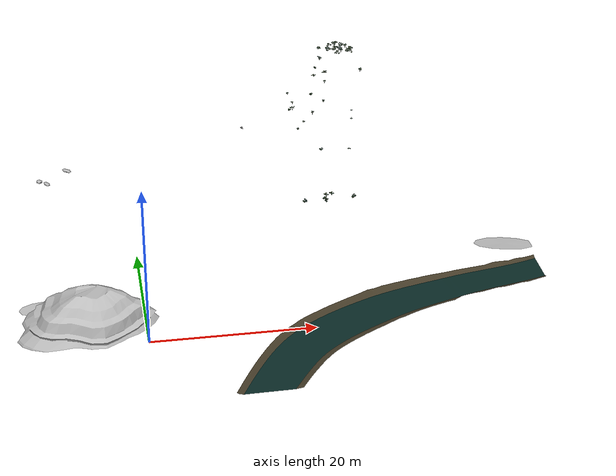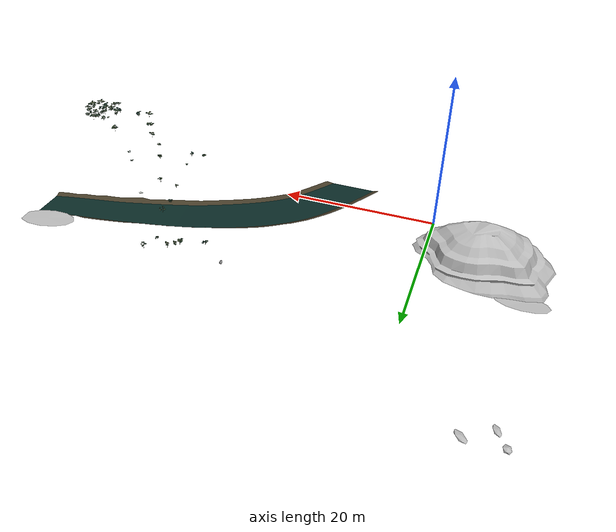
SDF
<sdf version="1.8">
 <model name="blue_mountains">
  <static>true</static>
  <link name="forest_22_22">
   <collision name="plant_477_crown_0">
    <pose>24.8121 21.62531 4.997375 0 0 0</pose>
    <geometry>
     <mesh>
      <uri>model://blue_mountains/meshes/canopy_9_0.dae</uri>
      <scale>0.07575656 0.07575656 0.06926315</scale>
     </mesh>
    </geometry>
   </collision>
   <collision name="plant_477_crown_1">
    <pose>24.8121 21.62531 4.997375 0 0 0</pose>
    <geometry>
     <mesh>
      <uri>model://blue_mountains/meshes/canopy_9_1.dae</uri>
      <scale>0.07575656 0.07575656 0.06926315</scale>
     </mesh>
    </geometry>
   </collision>
   <collision name="plant_495_crown_0">
    <pose>21.98191 20.97083 5.190541 0 0 0</pose>
    <geometry>
     <mesh>
      <uri>model://blue_mountains/meshes/canopy_11_0.dae</uri>
      <scale>0.07575656 0.07575656 0.06926315</scale>
     </mesh>
    </geometry>
   </collision>
   <collision name="plant_495_crown_1">
    <pose>21.98191 20.97083 5.190541 0 0 0</pose>
    <geometry>
     <mesh>
      <uri>model://blue_mountains/meshes/canopy_11_1.dae</uri>
      <scale>0.07575656 0.07575656 0.06926315</scale>
     </mesh>
    </geometry>
   </collision>
   <collision name="plant_505_crown_0">
    <pose>25.05556 22.26458 5.16184 0 0 0</pose>
    <geometry>
     <mesh>
      <uri>model://blue_mountains/meshes/canopy_12_0.dae</uri>
      <scale>0.07575656 0.07575656 0.06926315</scale>
     </mesh>
    </geometry>
   </collision>
   <collision name="plant_505_crown_1">
    <pose>25.05556 22.26458 5.16184 0 0 0</pose>
    <geometry>
     <mesh>
      <uri>model://blue_mountains/meshes/canopy_12_1.dae</uri>
      <scale>0.07575656 0.07575656 0.06926315</scale>
     </mesh>
    </geometry>
   </collision>
   <collision name="plant_511_crown_0">
    <pose>28.81359 22.76041 4.338375 0 0 0</pose>
    <geometry>
     <mesh>
      <uri>model://blue_mountains/meshes/canopy_10_0.dae</uri>
      <scale>0.07575656 0.07575656 0.06926315</scale>
     </mesh>
    </geometry>
   </collision>
   <collision name="plant_511_crown_1">
    <pose>28.81359 22.76041 4.338375 0 0 0</pose>
    <geometry>
     <mesh>
      <uri>model://blue_mountains/meshes/canopy_10_1.dae</uri>
      <scale>0.07575656 0.07575656 0.06926315</scale>
     </mesh>
    </geometry>
   </collision>
   <collision name="plant_514_crown_0">
    <pose>24.92505 21.28887 4.856432 0 0 0</pose>
    <geometry>
     <mesh>
      <uri>model://blue_mountains/meshes/canopy_13_0.dae</uri>
      <scale>0.07575656 0.07575656 0.06926315</scale>
     </mesh>
    </geometry>
   </collision>
   <collision name="plant_514_crown_1">
    <pose>24.92505 21.28887 4.856432 0 0 0</pose>
    <geometry>
     <mesh>
      <uri>model://blue_mountains/meshes/canopy_13_1.dae</uri>
      <scale>0.07575656 0.07575656 0.06926315</scale>
     </mesh>
    </geometry>
   </collision>
   <collision name="plant_519_crown_0">
    <pose>25.83959 22.62538 5.096157 0 0 0</pose>
    <geometry>
     <mesh>
      <uri>model://blue_mountains/meshes/canopy_12_0.dae</uri>
      <scale>0.07575656 0.07575656 0.06926315</scale>
     </mesh>
    </geometry>
   </collision>
   <collision name="plant_519_crown_1">
    <pose>25.83959 22.62538 5.096157 0 0 0</pose>
    <geometry>
     <mesh>
      <uri>model://blue_mountains/meshes/canopy_12_1.dae</uri>
      <scale>0.07575656 0.07575656 0.06926315</scale>
     </mesh>
    </geometry>
   </collision>
   <collision name="plant_655_crown_0">
    <pose>22.48026 29.46731 11.62574 0 0 0.4088487</pose>
    <geometry>
     <mesh>
      <uri>model://blue_mountains/meshes/canopy_15_0.dae</uri>
      <scale>0.05752255 0.05752255 0.04141624</scale>
     </mesh>
    </geometry>
   </collision>
   <collision name="plant_655_crown_1">
    <pose>22.48026 29.46731 11.62574 0 0 0.4088487</pose>
    <geometry>
     <mesh>
      <uri>model://blue_mountains/meshes/canopy_15_1.dae</uri>
      <scale>0.05752255 0.05752255 0.04141624</scale>
     </mesh>
    </geometry>
   </collision>
   <collision name="plant_658_crown_0">
    <pose>20.42613 25.17585 18.98495 0 0 -2.370102</pose>
    <geometry>
     <mesh>
      <uri>model://blue_mountains/meshes/canopy_11_0.dae</uri>
      <scale>0.04493797 0.04493797 0.03235533</scale>
     </mesh>
    </geometry>
   </collision>
   <collision name="plant_658_crown_1">
    <pose>20.42613 25.17585 18.98495 0 0 -2.370102</pose>
    <geometry>
     <mesh>
      <uri>model://blue_mountains/meshes/canopy_11_1.dae</uri>
      <scale>0.04493797 0.04493797 0.03235533</scale>
     </mesh>
    </geometry>
   </collision>
   <collision name="plant_663_crown_0">
    <pose>20.33815 22.95034 17.68626 0 0 1.420233</pose>
    <geometry>
     <mesh>
      <uri>model://blue_mountains/meshes/canopy_17_0.dae</uri>
      <scale>0.04656841 0.04656841 0.03352926</scale>
     </mesh>
    </geometry>
   </collision>
   <collision name="plant_663_crown_1">
    <pose>20.33815 22.95034 17.68626 0 0 1.420233</pose>
    <geometry>
     <mesh>
      <uri>model://blue_mountains/meshes/canopy_17_1.dae</uri>
      <scale>0.04656841 0.04656841 0.03352926</scale>
     </mesh>
    </geometry>
   </collision>
   <collision name="plant_675_crown_0">
    <pose>21.72213 29.19857 14.87245 0 0 -0.8670271</pose>
    <geometry>
     <mesh>
      <uri>model://blue_mountains/meshes/canopy_10_0.dae</uri>
      <scale>0.0669905 0.0669905 0.04823316</scale>
     </mesh>
    </geometry>
   </collision>
   <collision name="plant_675_crown_1">
    <pose>21.72213 29.19857 14.87245 0 0 -0.8670271</pose>
    <geometry>
     <mesh>
      <uri>model://blue_mountains/meshes/canopy_10_1.dae</uri>
      <scale>0.0669905 0.0669905 0.04823316</scale>
     </mesh>
    </geometry>
   </collision>
   <collision name="plant_682_crown_0">
    <pose>21.06249 25.13386 17.68626 0 0 1.422908</pose>
    <geometry>
     <mesh>
      <uri>model://blue_mountains/meshes/canopy_15_0.dae</uri>
      <scale>0.03993847 0.03993847 0.0287557</scale>
     </mesh>
    </geometry>
   </collision>
   <collision name="plant_682_crown_1">
    <pose>21.06249 25.13386 17.68626 0 0 1.422908</pose>
    <geometry>
     <mesh>
      <uri>model://blue_mountains/meshes/canopy_15_1.dae</uri>
      <scale>0.03993847 0.03993847 0.0287557</scale>
     </mesh>
    </geometry>
   </collision>
   <collision name="plant_707_crown_0">
    <pose>22.54515 24.9659 14.87245 0 0 0.9075718</pose>
    <geometry>
     <mesh>
      <uri>model://blue_mountains/meshes/canopy_16_0.dae</uri>
      <scale>0.04918688 0.04918688 0.03541456</scale>
     </mesh>
    </geometry>
   </collision>
   <collision name="plant_707_crown_1">
    <pose>22.54515 24.9659 14.87245 0 0 0.9075718</pose>
    <geometry>
     <mesh>
      <uri>model://blue_mountains/meshes/canopy_16_1.dae</uri>
      <scale>0.04918688 0.04918688 0.03541456</scale>
     </mesh>
    </geometry>
   </collision>
   <collision name="plant_708_crown_0">
    <pose>20.33815 22.95034 17.68626 0 0 2.084018</pose>
    <geometry>
     <mesh>
      <uri>model://blue_mountains/meshes/canopy_17_0.dae</uri>
      <scale>0.03462904 0.03462904 0.02493291</scale>
     </mesh>
    </geometry>
   </collision>
   <collision name="plant_708_crown_1">
    <pose>20.33815 22.95034 17.68626 0 0 2.084018</pose>
    <geometry>
     <mesh>
      <uri>model://blue_mountains/meshes/canopy_17_1.dae</uri>
      <scale>0.03462904 0.03462904 0.02493291</scale>
     </mesh>
    </geometry>
   </collision>
   <collision name="plant_710_crown_0">
    <pose>29.02778 27.53106 23.53034 0 0 -2.683457</pose>
    <geometry>
     <mesh>
      <uri>model://blue_mountains/meshes/canopy_9_0.dae</uri>
      <scale>0.05830015 0.05830015 0.04197611</scale>
     </mesh>
    </geometry>
   </collision>
   <collision name="plant_710_crown_1">
    <pose>29.02778 27.53106 23.53034 0 0 -2.683457</pose>
    <geometry>
     <mesh>
      <uri>model://blue_mountains/meshes/canopy_9_1.dae</uri>
      <scale>0.05830015 0.05830015 0.04197611</scale>
     </mesh>
    </geometry>
   </collision>
   <collision name="plant_711_crown_0">
    <pose>27.09779 29.37577 23.53034 0 0 -2.66805</pose>
    <geometry>
     <mesh>
      <uri>model://blue_mountains/meshes/canopy_10_0.dae</uri>
      <scale>0.06574866 0.06574866 0.04733904</scale>
     </mesh>
    </geometry>
   </collision>
   <collision name="plant_711_crown_1">
    <pose>27.09779 29.37577 23.53034 0 0 -2.66805</pose>
    <geometry>
     <mesh>
      <uri>model://blue_mountains/meshes/canopy_10_1.dae</uri>
      <scale>0.06574866 0.06574866 0.04733904</scale>
     </mesh>
    </geometry>
   </collision>
   <collision name="plant_712_crown_0">
    <pose>26.03397 27.84061 23.53034 0 0 -2.25446</pose>
    <geometry>
     <mesh>
      <uri>model://blue_mountains/meshes/canopy_11_0.dae</uri>
      <scale>0.06727616 0.06727616 0.04843884</scale>
     </mesh>
    </geometry>
   </collision>
   <collision name="plant_712_crown_1">
    <pose>26.03397 27.84061 23.53034 0 0 -2.25446</pose>
    <geometry>
     <mesh>
      <uri>model://blue_mountains/meshes/canopy_11_1.dae</uri>
      <scale>0.06727616 0.06727616 0.04843884</scale>
     </mesh>
    </geometry>
   </collision>
   <collision name="plant_713_crown_0">
    <pose>27.0719 26.70132 23.53034 0 0 -1.737021</pose>
    <geometry>
     <mesh>
      <uri>model://blue_mountains/meshes/canopy_12_0.dae</uri>
      <scale>0.0564699 0.0564699 0.04065833</scale>
     </mesh>
    </geometry>
   </collision>
   <collision name="plant_713_crown_1">
    <pose>27.0719 26.70132 23.53034 0 0 -1.737021</pose>
    <geometry>
     <mesh>
      <uri>model://blue_mountains/meshes/canopy_12_1.dae</uri>
      <scale>0.0564699 0.0564699 0.04065833</scale>
     </mesh>
    </geometry>
   </collision>
   <collision name="plant_714_crown_0">
    <pose>26.77317 27.72388 23.53034 0 0 -0.7971276</pose>
    <geometry>
     <mesh>
      <uri>model://blue_mountains/meshes/canopy_13_0.dae</uri>
      <scale>0.05116172 0.05116172 0.03683644</scale>
     </mesh>
    </geometry>
   </collision>
   <collision name="plant_714_crown_1">
    <pose>26.77317 27.72388 23.53034 0 0 -0.7971276</pose>
    <geometry>
     <mesh>
      <uri>model://blue_mountains/meshes/canopy_13_1.dae</uri>
      <scale>0.05116172 0.05116172 0.03683644</scale>
     </mesh>
    </geometry>
   </collision>
   <collision name="plant_715_crown_0">
    <pose>28.85214 27.35548 23.53034 0 0 2.266787</pose>
    <geometry>
     <mesh>
      <uri>model://blue_mountains/meshes/canopy_14_0.dae</uri>
      <scale>0.0659223 0.0659223 0.04746406</scale>
     </mesh>
    </geometry>
   </collision>
   <collision name="plant_715_crown_1">
    <pose>28.85214 27.35548 23.53034 0 0 2.266787</pose>
    <geometry>
     <mesh>
      <uri>model://blue_mountains/meshes/canopy_14_1.dae</uri>
      <scale>0.0659223 0.0659223 0.04746406</scale>
     </mesh>
    </geometry>
   </collision>
   <collision name="plant_716_crown_0">
    <pose>28.58975 27.79852 23.53034 0 0 -0.1135653</pose>
    <geometry>
     <mesh>
      <uri>model://blue_mountains/meshes/canopy_16_0.dae</uri>
      <scale>0.03809663 0.03809663 0.02742958</scale>
     </mesh>
    </geometry>
   </collision>
   <collision name="plant_716_crown_1">
    <pose>28.58975 27.79852 23.53034 0 0 -0.1135653</pose>
    <geometry>
     <mesh>
      <uri>model://blue_mountains/meshes/canopy_16_1.dae</uri>
      <scale>0.03809663 0.03809663 0.02742958</scale>
     </mesh>
    </geometry>
   </collision>
   <collision name="plant_717_crown_0">
    <pose>26.46531 29.44872 23.53034 0 0 -1.716344</pose>
    <geometry>
     <mesh>
      <uri>model://blue_mountains/meshes/canopy_17_0.dae</uri>
      <scale>0.04638191 0.04638191 0.03339497</scale>
     </mesh>
    </geometry>
   </collision>
   <collision name="plant_717_crown_1">
    <pose>26.46531 29.44872 23.53034 0 0 -1.716344</pose>
    <geometry>
     <mesh>
      <uri>model://blue_mountains/meshes/canopy_17_1.dae</uri>
      <scale>0.04638191 0.04638191 0.03339497</scale>
     </mesh>
    </geometry>
   </collision>
   <collision name="plant_718_crown_0">
    <pose>27.86725 27.90038 23.53034 0 0 -2.233268</pose>
    <geometry>
     <mesh>
      <uri>model://blue_mountains/meshes/canopy_15_0.dae</uri>
      <scale>0.03855614 0.03855614 0.02776042</scale>
     </mesh>
    </geometry>
   </collision>
   <collision name="plant_718_crown_1">
    <pose>27.86725 27.90038 23.53034 0 0 -2.233268</pose>
    <geometry>
     <mesh>
      <uri>model://blue_mountains/meshes/canopy_15_1.dae</uri>
      <scale>0.03855614 0.03855614 0.02776042</scale>
     </mesh>
    </geometry>
   </collision>
   <collision name="plant_719_crown_0">
    <pose>27.29695 26.35002 23.53034 0 0 -1.51112</pose>
    <geometry>
     <mesh>
      <uri>model://blue_mountains/meshes/canopy_9_0.dae</uri>
      <scale>0.03508321 0.03508321 0.02525992</scale>
     </mesh>
    </geometry>
   </collision>
   <collision name="plant_719_crown_1">
    <pose>27.29695 26.35002 23.53034 0 0 -1.51112</pose>
    <geometry>
     <mesh>
      <uri>model://blue_mountains/meshes/canopy_9_1.dae</uri>
      <scale>0.03508321 0.03508321 0.02525992</scale>
     </mesh>
    </geometry>
   </collision>
   <collision name="plant_720_crown_0">
    <pose>27.30782 28.45706 23.53034 0 0 1.235937</pose>
    <geometry>
     <mesh>
      <uri>model://blue_mountains/meshes/canopy_10_0.dae</uri>
      <scale>0.03634211 0.03634211 0.02616632</scale>
     </mesh>
    </geometry>
   </collision>
   <collision name="plant_720_crown_1">
    <pose>27.30782 28.45706 23.53034 0 0 1.235937</pose>
    <geometry>
     <mesh>
      <uri>model://blue_mountains/meshes/canopy_10_1.dae</uri>
      <scale>0.03634211 0.03634211 0.02616632</scale>
     </mesh>
    </geometry>
   </collision>
   <collision name="plant_721_crown_0">
    <pose>27.65587 27.17014 23.53034 0 0 1.095881</pose>
    <geometry>
     <mesh>
      <uri>model://blue_mountains/meshes/canopy_11_0.dae</uri>
      <scale>0.06417453 0.06417453 0.04620565</scale>
     </mesh>
    </geometry>
   </collision>
   <collision name="plant_721_crown_1">
    <pose>27.65587 27.17014 23.53034 0 0 1.095881</pose>
    <geometry>
     <mesh>
      <uri>model://blue_mountains/meshes/canopy_11_1.dae</uri>
      <scale>0.06417453 0.06417453 0.04620565</scale>
     </mesh>
    </geometry>
   </collision>
   <collision name="plant_722_crown_0">
    <pose>27.87573 28.52975 23.53034 0 0 0.8939752</pose>
    <geometry>
     <mesh>
      <uri>model://blue_mountains/meshes/canopy_12_0.dae</uri>
      <scale>0.0530874 0.0530874 0.03822292</scale>
     </mesh>
    </geometry>
   </collision>
   <collision name="plant_722_crown_1">
    <pose>27.87573 28.52975 23.53034 0 0 0.8939752</pose>
    <geometry>
     <mesh>
      <uri>model://blue_mountains/meshes/canopy_12_1.dae</uri>
      <scale>0.0530874 0.0530874 0.03822292</scale>
     </mesh>
    </geometry>
   </collision>
   <collision name="plant_723_crown_0">
    <pose>26.84497 26.3753 23.53034 0 0 1.830235</pose>
    <geometry>
     <mesh>
      <uri>model://blue_mountains/meshes/canopy_13_0.dae</uri>
      <scale>0.04508172 0.04508172 0.03245884</scale>
     </mesh>
    </geometry>
   </collision>
   <collision name="plant_723_crown_1">
    <pose>26.84497 26.3753 23.53034 0 0 1.830235</pose>
    <geometry>
     <mesh>
      <uri>model://blue_mountains/meshes/canopy_13_1.dae</uri>
      <scale>0.04508172 0.04508172 0.03245884</scale>
     </mesh>
    </geometry>
   </collision>
   <collision name="plant_724_crown_0">
    <pose>28.91924 27.07224 23.53034 0 0 -1.541854</pose>
    <geometry>
     <mesh>
      <uri>model://blue_mountains/meshes/canopy_14_0.dae</uri>
      <scale>0.03778629 0.03778629 0.02720612</scale>
     </mesh>
    </geometry>
   </collision>
   <collision name="plant_724_crown_1">
    <pose>28.91924 27.07224 23.53034 0 0 -1.541854</pose>
    <geometry>
     <mesh>
      <uri>model://blue_mountains/meshes/canopy_14_1.dae</uri>
      <scale>0.03778629 0.03778629 0.02720612</scale>
     </mesh>
    </geometry>
   </collision>
   <collision name="plant_725_crown_0">
    <pose>28.89664 26.52698 23.53034 0 0 2.129701</pose>
    <geometry>
     <mesh>
      <uri>model://blue_mountains/meshes/canopy_16_0.dae</uri>
      <scale>0.03384214 0.03384214 0.02436634</scale>
     </mesh>
    </geometry>
   </collision>
   <collision name="plant_725_crown_1">
    <pose>28.89664 26.52698 23.53034 0 0 2.129701</pose>
    <geometry>
     <mesh>
      <uri>model://blue_mountains/meshes/canopy_16_1.dae</uri>
      <scale>0.03384214 0.03384214 0.02436634</scale>
     </mesh>
    </geometry>
   </collision>
   <collision name="plant_726_crown_0">
    <pose>28.71704 27.47535 23.53034 0 0 2.611439</pose>
    <geometry>
     <mesh>
      <uri>model://blue_mountains/meshes/canopy_17_0.dae</uri>
      <scale>0.0431696 0.0431696 0.03108211</scale>
     </mesh>
    </geometry>
   </collision>
   <collision name="plant_726_crown_1">
    <pose>28.71704 27.47535 23.53034 0 0 2.611439</pose>
    <geometry>
     <mesh>
      <uri>model://blue_mountains/meshes/canopy_17_1.dae</uri>
      <scale>0.0431696 0.0431696 0.03108211</scale>
     </mesh>
    </geometry>
   </collision>
   <collision name="plant_727_crown_0">
    <pose>27.18453 29.12287 23.53034 0 0 0.4014978</pose>
    <geometry>
     <mesh>
      <uri>model://blue_mountains/meshes/canopy_15_0.dae</uri>
      <scale>0.03499951 0.03499951 0.02519965</scale>
     </mesh>
    </geometry>
   </collision>
   <collision name="plant_727_crown_1">
    <pose>27.18453 29.12287 23.53034 0 0 0.4014978</pose>
    <geometry>
     <mesh>
      <uri>model://blue_mountains/meshes/canopy_15_1.dae</uri>
      <scale>0.03499951 0.03499951 0.02519965</scale>
     </mesh>
    </geometry>
   </collision>
   <collision name="plant_728_crown_0">
    <pose>27.22433 28.29532 23.53034 0 0 2.983892</pose>
    <geometry>
     <mesh>
      <uri>model://blue_mountains/meshes/canopy_9_0.dae</uri>
      <scale>0.04448183 0.04448183 0.03202692</scale>
     </mesh>
    </geometry>
   </collision>
   <collision name="plant_728_crown_1">
    <pose>27.22433 28.29532 23.53034 0 0 2.983892</pose>
    <geometry>
     <mesh>
      <uri>model://blue_mountains/meshes/canopy_9_1.dae</uri>
      <scale>0.04448183 0.04448183 0.03202692</scale>
     </mesh>
    </geometry>
   </collision>
   <collision name="plant_729_crown_0">
    <pose>27.91837 29.02022 23.53034 0 0 2.11983</pose>
    <geometry>
     <mesh>
      <uri>model://blue_mountains/meshes/canopy_10_0.dae</uri>
      <scale>0.06305008 0.06305008 0.04539606</scale>
     </mesh>
    </geometry>
   </collision>
   <collision name="plant_729_crown_1">
    <pose>27.91837 29.02022 23.53034 0 0 2.11983</pose>
    <geometry>
     <mesh>
      <uri>model://blue_mountains/meshes/canopy_10_1.dae</uri>
      <scale>0.06305008 0.06305008 0.04539606</scale>
     </mesh>
    </geometry>
   </collision>
   <collision name="plant_730_crown_0">
    <pose>27.49224 27.94893 23.53034 0 0 -0.8970641</pose>
    <geometry>
     <mesh>
      <uri>model://blue_mountains/meshes/canopy_11_0.dae</uri>
      <scale>0.06542444 0.06542444 0.0471056</scale>
     </mesh>
    </geometry>
   </collision>
   <collision name="plant_730_crown_1">
    <pose>27.49224 27.94893 23.53034 0 0 -0.8970641</pose>
    <geometry>
     <mesh>
      <uri>model://blue_mountains/meshes/canopy_11_1.dae</uri>
      <scale>0.06542444 0.06542444 0.0471056</scale>
     </mesh>
    </geometry>
   </collision>
   <collision name="plant_731_crown_0">
    <pose>26.92082 27.51349 23.53034 0 0 1.570985</pose>
    <geometry>
     <mesh>
      <uri>model://blue_mountains/meshes/canopy_12_0.dae</uri>
      <scale>0.06101273 0.06101273 0.04392916</scale>
     </mesh>
    </geometry>
   </collision>
   <collision name="plant_731_crown_1">
    <pose>26.92082 27.51349 23.53034 0 0 1.570985</pose>
    <geometry>
     <mesh>
      <uri>model://blue_mountains/meshes/canopy_12_1.dae</uri>
      <scale>0.06101273 0.06101273 0.04392916</scale>
     </mesh>
    </geometry>
   </collision>
   <collision name="plant_732_crown_0">
    <pose>28.45865 28.55652 23.53034 0 0 2.997653</pose>
    <geometry>
     <mesh>
      <uri>model://blue_mountains/meshes/canopy_13_0.dae</uri>
      <scale>0.06350808 0.06350808 0.04572582</scale>
     </mesh>
    </geometry>
   </collision>
   <collision name="plant_732_crown_1">
    <pose>28.45865 28.55652 23.53034 0 0 2.997653</pose>
    <geometry>
     <mesh>
      <uri>model://blue_mountains/meshes/canopy_13_1.dae</uri>
      <scale>0.06350808 0.06350808 0.04572582</scale>
     </mesh>
    </geometry>
   </collision>
   <collision name="plant_733_crown_0">
    <pose>26.22005 29.09566 23.53034 0 0 -2.183051</pose>
    <geometry>
     <mesh>
      <uri>model://blue_mountains/meshes/canopy_14_0.dae</uri>
      <scale>0.03278054 0.03278054 0.02360199</scale>
     </mesh>
    </geometry>
   </collision>
   <collision name="plant_733_crown_1">
    <pose>26.22005 29.09566 23.53034 0 0 -2.183051</pose>
    <geometry>
     <mesh>
      <uri>model://blue_mountains/meshes/canopy_14_1.dae</uri>
      <scale>0.03278054 0.03278054 0.02360199</scale>
     </mesh>
    </geometry>
   </collision>
   <collision name="plant_734_crown_0">
    <pose>27.09233 28.25793 23.53034 0 0 0.2790104</pose>
    <geometry>
     <mesh>
      <uri>model://blue_mountains/meshes/canopy_16_0.dae</uri>
      <scale>0.05246384 0.05246384 0.03777396</scale>
     </mesh>
    </geometry>
   </collision>
   <collision name="plant_734_crown_1">
    <pose>27.09233 28.25793 23.53034 0 0 0.2790104</pose>
    <geometry>
     <mesh>
      <uri>model://blue_mountains/meshes/canopy_16_1.dae</uri>
      <scale>0.05246384 0.05246384 0.03777396</scale>
     </mesh>
    </geometry>
   </collision>
   <collision name="plant_735_crown_0">
    <pose>28.63628 26.94 23.53034 0 0 1.198449</pose>
    <geometry>
     <mesh>
      <uri>model://blue_mountains/meshes/canopy_17_0.dae</uri>
      <scale>0.03523869 0.03523869 0.02537186</scale>
     </mesh>
    </geometry>
   </collision>
   <collision name="plant_735_crown_1">
    <pose>28.63628 26.94 23.53034 0 0 1.198449</pose>
    <geometry>
     <mesh>
      <uri>model://blue_mountains/meshes/canopy_17_1.dae</uri>
      <scale>0.03523869 0.03523869 0.02537186</scale>
     </mesh>
    </geometry>
   </collision>
   <collision name="plant_736_crown_0">
    <pose>26.64752 29.17311 23.53034 0 0 -1.057465</pose>
    <geometry>
     <mesh>
      <uri>model://blue_mountains/meshes/canopy_15_0.dae</uri>
      <scale>0.03647898 0.03647898 0.02626486</scale>
     </mesh>
    </geometry>
   </collision>
   <collision name="plant_736_crown_1">
    <pose>26.64752 29.17311 23.53034 0 0 -1.057465</pose>
    <geometry>
     <mesh>
      <uri>model://blue_mountains/meshes/canopy_15_1.dae</uri>
      <scale>0.03647898 0.03647898 0.02626486</scale>
     </mesh>
    </geometry>
   </collision>
   <collision name="plant_737_crown_0">
    <pose>27.43703 29.56038 23.53034 0 0 -2.26319</pose>
    <geometry>
     <mesh>
      <uri>model://blue_mountains/meshes/canopy_9_0.dae</uri>
      <scale>0.06395958 0.06395958 0.0460509</scale>
     </mesh>
    </geometry>
   </collision>
   <collision name="plant_737_crown_1">
    <pose>27.43703 29.56038 23.53034 0 0 -2.26319</pose>
    <geometry>
     <mesh>
      <uri>model://blue_mountains/meshes/canopy_9_1.dae</uri>
      <scale>0.06395958 0.06395958 0.0460509</scale>
     </mesh>
    </geometry>
   </collision>
   <collision name="plant_738_crown_0">
    <pose>28.21038 29.26403 23.53034 0 0 0.8061937</pose>
    <geometry>
     <mesh>
      <uri>model://blue_mountains/meshes/canopy_10_0.dae</uri>
      <scale>0.04203441 0.04203441 0.03026477</scale>
     </mesh>
    </geometry>
   </collision>
   <collision name="plant_738_crown_1">
    <pose>28.21038 29.26403 23.53034 0 0 0.8061937</pose>
    <geometry>
     <mesh>
      <uri>model://blue_mountains/meshes/canopy_10_1.dae</uri>
      <scale>0.04203441 0.04203441 0.03026477</scale>
     </mesh>
    </geometry>
   </collision>
   <collision name="plant_739_crown_0">
    <pose>25.97171 27.57119 23.53034 0 0 -0.8923405</pose>
    <geometry>
     <mesh>
      <uri>model://blue_mountains/meshes/canopy_11_0.dae</uri>
      <scale>0.03720244 0.03720244 0.02678576</scale>
     </mesh>
    </geometry>
   </collision>
   <collision name="plant_739_crown_1">
    <pose>25.97171 27.57119 23.53034 0 0 -0.8923405</pose>
    <geometry>
     <mesh>
      <uri>model://blue_mountains/meshes/canopy_11_1.dae</uri>
      <scale>0.03720244 0.03720244 0.02678576</scale>
     </mesh>
    </geometry>
   </collision>
   <collision name="plant_740_crown_0">
    <pose>25.94339 28.25301 23.53034 0 0 2.491027</pose>
    <geometry>
     <mesh>
      <uri>model://blue_mountains/meshes/canopy_12_0.dae</uri>
      <scale>0.04568564 0.04568564 0.03289366</scale>
     </mesh>
    </geometry>
   </collision>
   <collision name="plant_740_crown_1">
    <pose>25.94339 28.25301 23.53034 0 0 2.491027</pose>
    <geometry>
     <mesh>
      <uri>model://blue_mountains/meshes/canopy_12_1.dae</uri>
      <scale>0.04568564 0.04568564 0.03289366</scale>
     </mesh>
    </geometry>
   </collision>
   <collision name="plant_741_crown_0">
    <pose>28.99994 28.01302 23.53034 0 0 -1.221309</pose>
    <geometry>
     <mesh>
      <uri>model://blue_mountains/meshes/canopy_13_0.dae</uri>
      <scale>0.05045071 0.05045071 0.03632452</scale>
     </mesh>
    </geometry>
   </collision>
   <collision name="plant_741_crown_1">
    <pose>28.99994 28.01302 23.53034 0 0 -1.221309</pose>
    <geometry>
     <mesh>
      <uri>model://blue_mountains/meshes/canopy_13_1.dae</uri>
      <scale>0.05045071 0.05045071 0.03632452</scale>
     </mesh>
    </geometry>
   </collision>
   <collision name="plant_742_crown_0">
    <pose>28.36133 26.77643 23.53034 0 0 1.663232</pose>
    <geometry>
     <mesh>
      <uri>model://blue_mountains/meshes/canopy_14_0.dae</uri>
      <scale>0.06309657 0.06309657 0.04542954</scale>
     </mesh>
    </geometry>
   </collision>
   <collision name="plant_742_crown_1">
    <pose>28.36133 26.77643 23.53034 0 0 1.663232</pose>
    <geometry>
     <mesh>
      <uri>model://blue_mountains/meshes/canopy_14_1.dae</uri>
      <scale>0.06309657 0.06309657 0.04542954</scale>
     </mesh>
    </geometry>
   </collision>
   <collision name="plant_743_crown_0">
    <pose>26.32739 27.76796 23.53034 0 0 1.091523</pose>
    <geometry>
     <mesh>
      <uri>model://blue_mountains/meshes/canopy_16_0.dae</uri>
      <scale>0.05075334 0.05075334 0.0365424</scale>
     </mesh>
    </geometry>
   </collision>
   <collision name="plant_743_crown_1">
    <pose>26.32739 27.76796 23.53034 0 0 1.091523</pose>
    <geometry>
     <mesh>
      <uri>model://blue_mountains/meshes/canopy_16_1.dae</uri>
      <scale>0.05075334 0.05075334 0.0365424</scale>
     </mesh>
    </geometry>
   </collision>
   <collision name="plant_744_crown_0">
    <pose>28.24958 29.05049 23.53034 0 0 -0.009535616</pose>
    <geometry>
     <mesh>
      <uri>model://blue_mountains/meshes/canopy_17_0.dae</uri>
      <scale>0.03146572 0.03146572 0.02265532</scale>
     </mesh>
    </geometry>
   </collision>
   <collision name="plant_744_crown_1">
    <pose>28.24958 29.05049 23.53034 0 0 -0.009535616</pose>
    <geometry>
     <mesh>
      <uri>model://blue_mountains/meshes/canopy_17_1.dae</uri>
      <scale>0.03146572 0.03146572 0.02265532</scale>
     </mesh>
    </geometry>
   </collision>
   <collision name="plant_745_crown_0">
    <pose>24.7724 26.51081 22.881 0 0 -1.116607</pose>
    <geometry>
     <mesh>
      <uri>model://blue_mountains/meshes/canopy_15_0.dae</uri>
      <scale>0.03175081 0.03175081 0.02286058</scale>
     </mesh>
    </geometry>
   </collision>
   <collision name="plant_745_crown_1">
    <pose>24.7724 26.51081 22.881 0 0 -1.116607</pose>
    <geometry>
     <mesh>
      <uri>model://blue_mountains/meshes/canopy_15_1.dae</uri>
      <scale>0.03175081 0.03175081 0.02286058</scale>
     </mesh>
    </geometry>
   </collision>
   <collision name="plant_748_crown_0">
    <pose>24.7724 26.51081 22.881 0 0 0.9780981</pose>
    <geometry>
     <mesh>
      <uri>model://blue_mountains/meshes/canopy_11_0.dae</uri>
      <scale>0.06155132 0.06155132 0.04431695</scale>
     </mesh>
    </geometry>
   </collision>
   <collision name="plant_748_crown_1">
    <pose>24.7724 26.51081 22.881 0 0 0.9780981</pose>
    <geometry>
     <mesh>
      <uri>model://blue_mountains/meshes/canopy_11_1.dae</uri>
      <scale>0.06155132 0.06155132 0.04431695</scale>
     </mesh>
    </geometry>
   </collision>
   <collision name="plant_749_crown_0">
    <pose>25.24479 29.7441 22.881 0 0 -2.543175</pose>
    <geometry>
     <mesh>
      <uri>model://blue_mountains/meshes/canopy_12_0.dae</uri>
      <scale>0.04938881 0.04938881 0.03555994</scale>
     </mesh>
    </geometry>
   </collision>
   <collision name="plant_749_crown_1">
    <pose>25.24479 29.7441 22.881 0 0 -2.543175</pose>
    <geometry>
     <mesh>
      <uri>model://blue_mountains/meshes/canopy_12_1.dae</uri>
      <scale>0.04938881 0.04938881 0.03555994</scale>
     </mesh>
    </geometry>
   </collision>
   <collision name="plant_750_crown_0">
    <pose>29.65402 24.52045 21.79876 0 0 3.023132</pose>
    <geometry>
     <mesh>
      <uri>model://blue_mountains/meshes/canopy_13_0.dae</uri>
      <scale>0.0684076 0.0684076 0.04925347</scale>
     </mesh>
    </geometry>
   </collision>
   <collision name="plant_750_crown_1">
    <pose>29.65402 24.52045 21.79876 0 0 3.023132</pose>
    <geometry>
     <mesh>
      <uri>model://blue_mountains/meshes/canopy_13_1.dae</uri>
      <scale>0.0684076 0.0684076 0.04925347</scale>
     </mesh>
    </geometry>
   </collision>
   <collision name="plant_752_crown_0">
    <pose>24.80066 23.57986 18.33561 0 0 -2.089291</pose>
    <geometry>
     <mesh>
      <uri>model://blue_mountains/meshes/canopy_16_0.dae</uri>
      <scale>0.0451362 0.0451362 0.03249807</scale>
     </mesh>
    </geometry>
   </collision>
   <collision name="plant_752_crown_1">
    <pose>24.80066 23.57986 18.33561 0 0 -2.089291</pose>
    <geometry>
     <mesh>
      <uri>model://blue_mountains/meshes/canopy_16_1.dae</uri>
      <scale>0.0451362 0.0451362 0.03249807</scale>
     </mesh>
    </geometry>
   </collision>
   <collision name="plant_753_crown_0">
    <pose>25.01443 24.17193 20.71653 0 0 -1.04846</pose>
    <geometry>
     <mesh>
      <uri>model://blue_mountains/meshes/canopy_17_0.dae</uri>
      <scale>0.0541682 0.0541682 0.03900111</scale>
     </mesh>
    </geometry>
   </collision>
   <collision name="plant_753_crown_1">
    <pose>25.01443 24.17193 20.71653 0 0 -1.04846</pose>
    <geometry>
     <mesh>
      <uri>model://blue_mountains/meshes/canopy_17_1.dae</uri>
      <scale>0.0541682 0.0541682 0.03900111</scale>
     </mesh>
    </geometry>
   </collision>
   <collision name="plant_754_crown_0">
    <pose>23.54514 25.70459 18.33561 0 0 1.443921</pose>
    <geometry>
     <mesh>
      <uri>model://blue_mountains/meshes/canopy_15_0.dae</uri>
      <scale>0.03112479 0.03112479 0.02240985</scale>
     </mesh>
    </geometry>
   </collision>
   <collision name="plant_754_crown_1">
    <pose>23.54514 25.70459 18.33561 0 0 1.443921</pose>
    <geometry>
     <mesh>
      <uri>model://blue_mountains/meshes/canopy_15_1.dae</uri>
      <scale>0.03112479 0.03112479 0.02240985</scale>
     </mesh>
    </geometry>
   </collision>
   <collision name="plant_755_crown_0">
    <pose>23.54514 25.70459 18.33561 0 0 2.1753</pose>
    <geometry>
     <mesh>
      <uri>model://blue_mountains/meshes/canopy_9_0.dae</uri>
      <scale>0.05557258 0.05557258 0.04001226</scale>
     </mesh>
    </geometry>
   </collision>
   <collision name="plant_755_crown_1">
    <pose>23.54514 25.70459 18.33561 0 0 2.1753</pose>
    <geometry>
     <mesh>
      <uri>model://blue_mountains/meshes/canopy_9_1.dae</uri>
      <scale>0.05557258 0.05557258 0.04001226</scale>
     </mesh>
    </geometry>
   </collision>
   <collision name="plant_756_crown_0">
    <pose>28.12214 22.88281 11.62574 0 0 -0.5603578</pose>
    <geometry>
     <mesh>
      <uri>model://blue_mountains/meshes/canopy_10_0.dae</uri>
      <scale>0.04315358 0.04315358 0.03107058</scale>
     </mesh>
    </geometry>
   </collision>
   <collision name="plant_756_crown_1">
    <pose>28.12214 22.88281 11.62574 0 0 -0.5603578</pose>
    <geometry>
     <mesh>
      <uri>model://blue_mountains/meshes/canopy_10_1.dae</uri>
      <scale>0.04315358 0.04315358 0.03107058</scale>
     </mesh>
    </geometry>
   </collision>
   <collision name="plant_762_crown_0">
    <pose>25.24479 29.7441 22.881 0 0 -1.578107</pose>
    <geometry>
     <mesh>
      <uri>model://blue_mountains/meshes/canopy_17_0.dae</uri>
      <scale>0.06630565 0.06630565 0.04774007</scale>
     </mesh>
    </geometry>
   </collision>
   <collision name="plant_762_crown_1">
    <pose>25.24479 29.7441 22.881 0 0 -1.578107</pose>
    <geometry>
     <mesh>
      <uri>model://blue_mountains/meshes/canopy_17_1.dae</uri>
      <scale>0.06630565 0.06630565 0.04774007</scale>
     </mesh>
    </geometry>
   </collision>
   <collision name="plant_766_crown_0">
    <pose>24.47733 23.18514 11.62574 0 0 -0.5902436</pose>
    <geometry>
     <mesh>
      <uri>model://blue_mountains/meshes/canopy_11_0.dae</uri>
      <scale>0.05492388 0.05492388 0.03954519</scale>
     </mesh>
    </geometry>
   </collision>
   <collision name="plant_766_crown_1">
    <pose>24.47733 23.18514 11.62574 0 0 -0.5902436</pose>
    <geometry>
     <mesh>
      <uri>model://blue_mountains/meshes/canopy_11_1.dae</uri>
      <scale>0.05492388 0.05492388 0.03954519</scale>
     </mesh>
    </geometry>
   </collision>
   <collision name="plant_767_crown_0">
    <pose>24.47733 23.18514 11.62574 0 0 0.1908808</pose>
    <geometry>
     <mesh>
      <uri>model://blue_mountains/meshes/canopy_12_0.dae</uri>
      <scale>0.03757537 0.03757537 0.02705427</scale>
     </mesh>
    </geometry>
   </collision>
   <collision name="plant_767_crown_1">
    <pose>24.47733 23.18514 11.62574 0 0 0.1908808</pose>
    <geometry>
     <mesh>
      <uri>model://blue_mountains/meshes/canopy_12_1.dae</uri>
      <scale>0.03757537 0.03757537 0.02705427</scale>
     </mesh>
    </geometry>
   </collision>
   <collision name="plant_773_crown_0">
    <pose>24.14903 26.1077 21.79876 0 0 -1.076497</pose>
    <geometry>
     <mesh>
      <uri>model://blue_mountains/meshes/canopy_9_0.dae</uri>
      <scale>0.051461 0.051461 0.03705192</scale>
     </mesh>
    </geometry>
   </collision>
   <collision name="plant_773_crown_1">
    <pose>24.14903 26.1077 21.79876 0 0 -1.076497</pose>
    <geometry>
     <mesh>
      <uri>model://blue_mountains/meshes/canopy_9_1.dae</uri>
      <scale>0.051461 0.051461 0.03705192</scale>
     </mesh>
    </geometry>
   </collision>
   <collision name="plant_774_crown_0">
    <pose>24.80066 23.57986 18.33561 0 0 -0.02806407</pose>
    <geometry>
     <mesh>
      <uri>model://blue_mountains/meshes/canopy_10_0.dae</uri>
      <scale>0.03246524 0.03246524 0.02337497</scale>
     </mesh>
    </geometry>
   </collision>
   <collision name="plant_774_crown_1">
    <pose>24.80066 23.57986 18.33561 0 0 -0.02806407</pose>
    <geometry>
     <mesh>
      <uri>model://blue_mountains/meshes/canopy_10_1.dae</uri>
      <scale>0.03246524 0.03246524 0.02337497</scale>
     </mesh>
    </geometry>
   </collision>
   <collision name="plant_775_crown_0">
    <pose>28.40157 23.30272 15.73824 0 0 -0.08102017</pose>
    <geometry>
     <mesh>
      <uri>model://blue_mountains/meshes/canopy_11_0.dae</uri>
      <scale>0.03507979 0.03507979 0.02525745</scale>
     </mesh>
    </geometry>
   </collision>
   <collision name="plant_775_crown_1">
    <pose>28.40157 23.30272 15.73824 0 0 -0.08102017</pose>
    <geometry>
     <mesh>
      <uri>model://blue_mountains/meshes/canopy_11_1.dae</uri>
      <scale>0.03507979 0.03507979 0.02525745</scale>
     </mesh>
    </geometry>
   </collision>
   <collision name="plant_776_crown_0">
    <pose>25.06653 24.36929 21.79876 0 0 1.024252</pose>
    <geometry>
     <mesh>
      <uri>model://blue_mountains/meshes/canopy_12_0.dae</uri>
      <scale>0.06897385 0.06897385 0.04966117</scale>
     </mesh>
    </geometry>
   </collision>
   <collision name="plant_776_crown_1">
    <pose>25.06653 24.36929 21.79876 0 0 1.024252</pose>
    <geometry>
     <mesh>
      <uri>model://blue_mountains/meshes/canopy_12_1.dae</uri>
      <scale>0.06897385 0.06897385 0.04966117</scale>
     </mesh>
    </geometry>
   </collision>
   <collision name="plant_783_crown_0">
    <pose>24.47733 23.18514 11.62574 0 0 -3.035316</pose>
    <geometry>
     <mesh>
      <uri>model://blue_mountains/meshes/canopy_10_0.dae</uri>
      <scale>0.04176773 0.04176773 0.03007277</scale>
     </mesh>
    </geometry>
   </collision>
   <collision name="plant_783_crown_1">
    <pose>24.47733 23.18514 11.62574 0 0 -3.035316</pose>
    <geometry>
     <mesh>
      <uri>model://blue_mountains/meshes/canopy_10_1.dae</uri>
      <scale>0.04176773 0.04176773 0.03007277</scale>
     </mesh>
    </geometry>
   </collision>
   <collision name="plant_784_crown_0">
    <pose>24.14903 26.1077 21.79876 0 0 1.072181</pose>
    <geometry>
     <mesh>
      <uri>model://blue_mountains/meshes/canopy_11_0.dae</uri>
      <scale>0.03119047 0.03119047 0.02245714</scale>
     </mesh>
    </geometry>
   </collision>
   <collision name="plant_784_crown_1">
    <pose>24.14903 26.1077 21.79876 0 0 1.072181</pose>
    <geometry>
     <mesh>
      <uri>model://blue_mountains/meshes/canopy_11_1.dae</uri>
      <scale>0.03119047 0.03119047 0.02245714</scale>
     </mesh>
    </geometry>
   </collision>
   <collision name="plant_785_crown_0">
    <pose>23.95206 26.00693 20.71653 0 0 0.4954023</pose>
    <geometry>
     <mesh>
      <uri>model://blue_mountains/meshes/canopy_12_0.dae</uri>
      <scale>0.06193554 0.06193554 0.04459359</scale>
     </mesh>
    </geometry>
   </collision>
   <collision name="plant_785_crown_1">
    <pose>23.95206 26.00693 20.71653 0 0 0.4954023</pose>
    <geometry>
     <mesh>
      <uri>model://blue_mountains/meshes/canopy_12_1.dae</uri>
      <scale>0.06193554 0.06193554 0.04459359</scale>
     </mesh>
    </geometry>
   </collision>
   <collision name="plant_786_crown_0">
    <pose>23.54514 25.70459 18.33561 0 0 1.204588</pose>
    <geometry>
     <mesh>
      <uri>model://blue_mountains/meshes/canopy_13_0.dae</uri>
      <scale>0.04857068 0.04857068 0.03497089</scale>
     </mesh>
    </geometry>
   </collision>
   <collision name="plant_786_crown_1">
    <pose>23.54514 25.70459 18.33561 0 0 1.204588</pose>
    <geometry>
     <mesh>
      <uri>model://blue_mountains/meshes/canopy_13_1.dae</uri>
      <scale>0.04857068 0.04857068 0.03497089</scale>
     </mesh>
    </geometry>
   </collision>
   <collision name="plant_790_crown_0">
    <pose>23.76159 25.70459 15.73824 0 0 -0.5213416</pose>
    <geometry>
     <mesh>
      <uri>model://blue_mountains/meshes/canopy_15_0.dae</uri>
      <scale>0.05750523 0.05750523 0.04140376</scale>
     </mesh>
    </geometry>
   </collision>
   <collision name="plant_790_crown_1">
    <pose>23.76159 25.70459 15.73824 0 0 -0.5213416</pose>
    <geometry>
     <mesh>
      <uri>model://blue_mountains/meshes/canopy_15_1.dae</uri>
      <scale>0.05750523 0.05750523 0.04140376</scale>
     </mesh>
    </geometry>
   </collision>
   <collision name="plant_793_crown_0">
    <pose>28.46455 23.51267 16.82048 0 0 2.882937</pose>
    <geometry>
     <mesh>
      <uri>model://blue_mountains/meshes/canopy_11_0.dae</uri>
      <scale>0.03414252 0.03414252 0.02458261</scale>
     </mesh>
    </geometry>
   </collision>
   <collision name="plant_793_crown_1">
    <pose>28.46455 23.51267 16.82048 0 0 2.882937</pose>
    <geometry>
     <mesh>
      <uri>model://blue_mountains/meshes/canopy_11_1.dae</uri>
      <scale>0.03414252 0.03414252 0.02458261</scale>
     </mesh>
    </geometry>
   </collision>
   <visual name="forest_visual">
    <geometry><mesh><uri>model://blue_mountains/meshes/forest_22_22.dae</uri></mesh></geometry>
    <cast_shadows>false</cast_shadows>
   </visual>
  </link>
  <link name="forest_21_23">
   <collision name="plant_668_crown_0">
    <pose>15.32083 30.83201 11.62574 0 0 0.07501253</pose>
    <geometry>
     <mesh>
      <uri>model://blue_mountains/meshes/canopy_12_0.dae</uri>
      <scale>0.06694079 0.06694079 0.04819737</scale>
     </mesh>
    </geometry>
   </collision>
   <collision name="plant_668_crown_1">
    <pose>15.32083 30.83201 11.62574 0 0 0.07501253</pose>
    <geometry>
     <mesh>
      <uri>model://blue_mountains/meshes/canopy_12_1.dae</uri>
      <scale>0.06694079 0.06694079 0.04819737</scale>
     </mesh>
    </geometry>
   </collision>
   <collision name="plant_672_crown_0">
    <pose>18.16512 30.17276 17.68626 0 0 -1.923455</pose>
    <geometry>
     <mesh>
      <uri>model://blue_mountains/meshes/canopy_17_0.dae</uri>
      <scale>0.05628333 0.05628333 0.040524</scale>
     </mesh>
    </geometry>
   </collision>
   <collision name="plant_672_crown_1">
    <pose>18.16512 30.17276 17.68626 0 0 -1.923455</pose>
    <geometry>
     <mesh>
      <uri>model://blue_mountains/meshes/canopy_17_1.dae</uri>
      <scale>0.05628333 0.05628333 0.040524</scale>
     </mesh>
    </geometry>
   </collision>
   <collision name="plant_698_crown_0">
    <pose>19.48632 31.43248 11.62574 0 0 0.2860242</pose>
    <geometry>
     <mesh>
      <uri>model://blue_mountains/meshes/canopy_16_0.dae</uri>
      <scale>0.04804705 0.04804705 0.03459388</scale>
     </mesh>
    </geometry>
   </collision>
   <collision name="plant_698_crown_1">
    <pose>19.48632 31.43248 11.62574 0 0 0.2860242</pose>
    <geometry>
     <mesh>
      <uri>model://blue_mountains/meshes/canopy_16_1.dae</uri>
      <scale>0.04804705 0.04804705 0.03459388</scale>
     </mesh>
    </geometry>
   </collision>
   <collision name="plant_700_crown_0">
    <pose>19.48632 31.43248 11.62574 0 0 0.513192</pose>
    <geometry>
     <mesh>
      <uri>model://blue_mountains/meshes/canopy_15_0.dae</uri>
      <scale>0.06131364 0.06131364 0.04414582</scale>
     </mesh>
    </geometry>
   </collision>
   <collision name="plant_700_crown_1">
    <pose>19.48632 31.43248 11.62574 0 0 0.513192</pose>
    <geometry>
     <mesh>
      <uri>model://blue_mountains/meshes/canopy_15_1.dae</uri>
      <scale>0.06131364 0.06131364 0.04414582</scale>
     </mesh>
    </geometry>
   </collision>
   <visual name="forest_visual">
    <geometry><mesh><uri>model://blue_mountains/meshes/forest_21_23.dae</uri></mesh></geometry>
    <cast_shadows>false</cast_shadows>
   </visual>
  </link>
  <link name="landscape_800">
   <visual name="visual">
    <geometry><mesh><uri>model://blue_mountains/meshes/0800_sandstone_talus_05.dae</uri></mesh></geometry>
    <cast_shadows>false</cast_shadows>
   </visual>
   <collision name="collision">
    <geometry><mesh><uri>model://blue_mountains/meshes/0800_sandstone_talus_05.dae</uri></mesh></geometry>
   </collision>
  </link>
  <link name="landscape_801">
   <visual name="visual">
    <geometry><mesh><uri>model://blue_mountains/meshes/0801_sandstone_talus_07.dae</uri></mesh></geometry>
    <cast_shadows>false</cast_shadows>
   </visual>
   <collision name="collision">
    <geometry><mesh><uri>model://blue_mountains/meshes/0801_sandstone_talus_07.dae</uri></mesh></geometry>
   </collision>
  </link>
  <link name="landscape_802">
   <visual name="visual">
    <geometry><mesh><uri>model://blue_mountains/meshes/0802_sandstone_talus_16.dae</uri></mesh></geometry>
    <cast_shadows>false</cast_shadows>
   </visual>
   <collision name="collision">
    <geometry><mesh><uri>model://blue_mountains/meshes/0802_sandstone_talus_16.dae</uri></mesh></geometry>
   </collision>
  </link>
  <link name="landscape_803">
   <visual name="visual">
    <geometry><mesh><uri>model://blue_mountains/meshes/0803_exposed_sandstone_shelf_00.dae</uri></mesh></geometry>
    <cast_shadows>false</cast_shadows>
   </visual>
  </link>
  <link name="landscape_804">
   <visual name="visual">
    <geometry><mesh><uri>model://blue_mountains/meshes/0804_exposed_sandstone_shelf_02.dae</uri></mesh></geometry>
    <cast_shadows>false</cast_shadows>
   </visual>
  </link>
  <link name="landscape_805">
   <visual name="visual">
    <geometry><mesh><uri>model://blue_mountains/meshes/0805_southern_low_outcrop.dae</uri></mesh></geometry>
    <cast_shadows>false</cast_shadows>
   </visual>
   <collision name="collision">
    <geometry><mesh><uri>model://blue_mountains/meshes/0805_southern_low_outcrop.dae</uri></mesh></geometry>
   </collision>
  </link>
  <link name="landscape_820">
   <visual name="visual">
    <geometry><mesh><uri>model://blue_mountains/meshes/0820_winding_river_water.dae</uri></mesh></geometry>
    <cast_shadows>false</cast_shadows>
    <material>
     <ambient>0.035 0.16 0.145 1</ambient>
     <diffuse>0.035 0.16 0.145 1</diffuse>
     <specular>0.02 0.02 0.02 1</specular>
    </material>
   </visual>
  </link>
  <link name="landscape_821">
   <visual name="visual">
    <geometry><mesh><uri>model://blue_mountains/meshes/0821_left_gravel_bank.dae</uri></mesh></geometry>
    <cast_shadows>false</cast_shadows>
   </visual>
  </link>
  <link name="landscape_822">
   <visual name="visual">
    <geometry><mesh><uri>model://blue_mountains/meshes/0822_right_gravel_bank.dae</uri></mesh></geometry>
    <cast_shadows>false</cast_shadows>
   </visual>
  </link>
 </model>
</sdf>
